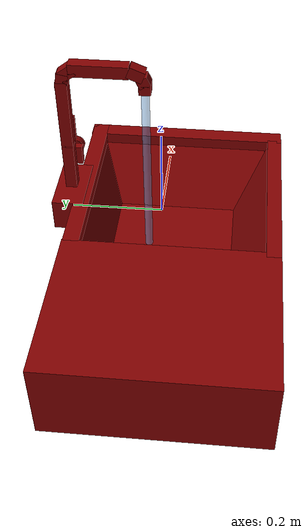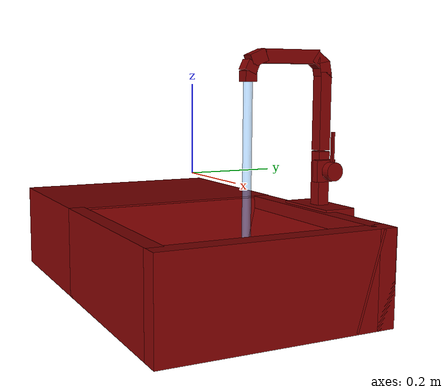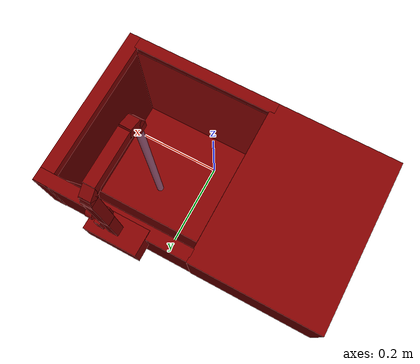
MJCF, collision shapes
<?xml version='1.0' encoding='UTF-8'?>
<mujoco model="model">
  <option timestep="0.002" gravity="0.0 0.0 -9.81"/>
  <compiler angle="radian"/>
  <asset>
    <mesh file="visuals/handle.obj" name="handle_vis"/>
    <mesh file="visuals/Body001.obj" name="Body001_vis"/>
    <mesh file="visuals/spout.obj" name="spout_vis"/>
    <texture file="visuals/T_BC001.png" name="Body001_material" type="2d"/>
    <material name="Body001_material" rgba="1 1 1 1.0" texture="Body001_material" shininess="0.1" specular="3"/>
    <texture file="visuals/T_BC001.png" name="handle_material" type="2d"/>
    <material name="handle_material" rgba="1 1 1 1.0" texture="handle_material" shininess="0.1" specular="3"/>
    <texture file="visuals/T_BC001.png" name="spout_material" type="2d"/>
    <material name="spout_material" rgba="1 1 1 1.0" texture="spout_material" shininess="0.1" specular="3"/>
  </asset>
  <default>
    <default class="visual">
      <geom conaffinity="0" contype="0" group="1" type="mesh"/>
    </default>
    <default class="collision">
      <geom group="0" rgba="0.5 0 0 0.5" solimp="0.998 0.998 0.001" solref="0.001 2"/>
    </default>
    <default class="spawn">
      <geom group="0" rgba="1 1 1 0.5" contype="0" conaffinity="0"/>
      <site group="0" rgba="1 1 1 0.5"/>
    </default>
    <default class="region">
      <geom group="1" conaffinity="0" contype="0" rgba="0 1 0 0"/>
    </default>
  </default>
  <worldbody>
    <body>
      <body name="object">
        <geom mesh="Body001_vis" type="mesh" solimp="0.998 0.998 0.001" solref="0.001 1" friction="0.95 0.3 0.1" class="visual" material="Body001_material"/>
        <geom type="box" pos="0.16663018 -0.25851465 -0.17092481" size="0.22345054149627686 0.017767369747161865 0.10032819956541061" quat="1.0 0.0 0.0 0.0" class="collision"/>
        <geom type="box" pos="0.19058277 0.20809307 -0.17092481" size="0.2342374175786972 0.01933664083480835 0.10032819956541061" quat="1.0 0.0 0.0 0.0" class="collision"/>
        <geom type="box" pos="0.40365690 -0.02369790 -0.17092481" size="0.02116328477859497 0.25258415937423706 0.10032819956541061" quat="1.0 0.0 0.0 0.0" class="collision"/>
        <geom type="box" pos="0.17358396 -0.02730834 -0.25996244" size="0.21415582299232483 0.21705441176891327 0.01129104383289814" quat="1.0 0.0 0.0 0.0" class="collision"/>
        <geom type="box" pos="0.15698193 0.23891968 -0.10482294" size="0.07781156897544861 0.03736326843500137 0.039299458265304565" quat="1.0 0.0 0.0 0.0" class="collision"/>
        <geom type="box" pos="0.15770048 0.23933315 -0.00594367" size="0.014406781643629074 0.013618595898151398 0.05938158556818962" quat="1.0 0.0 0.0 0.0" class="collision"/>
        <geom type="box" pos="0.17764703 0.23477545 0.01228489" size="0.008593222126364708 0.02361196093261242 0.023806529119610786" quat="1.0 0.0 0.0 0.0" class="collision"/>
        <geom type="box" pos="-0.23308953 -0.02369789 -0.17092484" size="0.19166365265846252 0.2525840997695923 0.10032818466424942" quat="1.0 0.0 0.0 0.0" class="collision"/>
        <geom type="box" pos="0.19058283 0.17075255 -0.17017539" size="0.23423747718334198 0.0025818401481956244 0.10163592547178268" quat="0.9898217916488647 -0.14231231808662415 -0.0 0.0" class="collision"/>
        <geom type="box" pos="0.17116182 -0.20427034 -0.17052633" size="0.2343486249446869 0.0025818401481956244 0.10163593292236328" quat="0.9736520051956177 0.22803905606269836 0.0 0.0" class="collision"/>
        <geom type="box" pos="0.35153494 -0.01666721 -0.16638383" size="0.2179635465145111 0.0025818401481956244 0.10163593292236328" quat="0.6884759664535522 0.16124796867370605 0.16124795377254486 0.6884759068489075" class="collision"/>
        <geom type="box" pos="-0.03260744 -0.01666721 -0.16625552" size="0.2179635465145111 0.0025818406138569117 0.09228679537773132" quat="0.7060168385505676 -0.03924567252397537 -0.03924565389752388 0.7060168385505676" class="collision"/>
        <body name="handle">
          <joint axis="1.0 0.0 0.0" pos="0.20041150 0.23378953 0.01414507" limited="true" name="handle_temp_joint" type="hinge" range="-0.7853981633974483 0.7853981633974483" damping="0.5" frictionloss="1" armature="2"/>
          <joint axis="0.0 1.0 0.0" pos="0.20041150 0.23378953 0.01414507" limited="true" name="handle_joint" type="hinge" range="0 0.5" damping="0.5" frictionloss="1" armature="2"/>
          <geom mesh="handle_vis" type="mesh" solimp="0.998 0.998 0.001" solref="0.001 1" friction="0.95 0.3 0.1" class="visual" material="handle_material"/>
          <geom type="cylinder" pos="0.21028650 0.23355758 0.01366222" size="0.020145172253251076 0.00976423267275095" quat="0.7071068286895752 -0.0 0.7071067690849304 0.0" class="collision"/>
          <geom name="handle_main" type="box" pos="0.20876464 0.23350600 0.06633405" size="0.003144390881061554 0.0028439750894904137 0.032371636480093" quat="1.0 0.0 0.0 0.0" class="collision"/>
        </body>
        <body name="spout">
          <joint axis="0.0 0.0 1.0" pos="0.15675047 0.23910322 0.16301976" limited="true" name="spout_joint" range="-0.7853981633974483 0.7853981633974483" type="hinge" damping="10"/>
          <site type="cylinder" rgba="0.5 0.75 1 0.5" size="0.009647421538829803 0.23899467289447784" pos="0.15685652 0.05203576 -0.03057855" name="water"/>
          <geom mesh="spout_vis" type="mesh" solimp="0.998 0.998 0.001" solref="0.001 1" friction="0.95 0.3 0.1" class="visual" material="spout_material"/>
          <geom type="box" pos="0.15770048 0.23933315 0.14137934" size="0.014406781643629074 0.013618595898151398 0.08504720777273178" quat="1.0 0.0 0.0 0.0" class="collision" name="spout_main"/>
          <geom type="box" pos="0.15770048 0.05444910 0.23576683" size="0.014406781643629074 0.013618596829473972 0.011216707527637482" quat="0.9767463207244873 -0.21439839899539948 -0.0 0.0" class="collision"/>
          <geom type="box" pos="0.15770048 0.15369728 0.25861388" size="0.014406781643629074 0.06741032004356384 0.014789029955863953" quat="1.0 0.0 0.0 0.0" class="collision"/>
          <geom type="box" pos="0.15770048 0.05171007 0.21676479" size="0.014406781643629074 0.013618596829473972 0.011216707527637482" quat="1.0 0.0 0.0 0.0" class="collision"/>
          <geom type="box" pos="0.15770048 0.07074359 0.25461408" size="0.014406781643629074 0.013618596829473972 0.018483925610780716" quat="0.8309270143508911 -0.5563814043998718 -0.0 0.0" class="collision"/>
          <geom type="box" pos="0.15770048 0.22575279 0.24884842" size="0.014406781643629074 0.013618596829473972 0.018483925610780716" quat="0.4496017098426819 -0.8932291269302368 -0.0 0.0" class="collision"/>
          <geom type="box" pos="0.15770048 0.23739367 0.22950402" size="0.014406781643629074 0.013618596829473972 0.018483925610780716" quat="0.09119181334972382 -0.9958333373069763 -0.0 0.0" class="collision"/>
        </body>
        <geom class="region" name="reg_basin" type="box" pos="0.145956685 -0.011062744999999999 -0.162600675" size="0.160274385 0.14720317500000002 0.085393035"/>
        <geom class="region" name="reg_main" type="box" pos="1.1499999999498023e-07 -0.025 -0.17092512499999998" size="0.425820125 0.2515 0.101328475"/>
      </body>
    </body>
  </worldbody>
  <actuator>
    <motor name="handle_joint_actuator" joint="handle_joint" gear="10"/>
    <motor name="handle_temp_joint_actuator" joint="handle_temp_joint" gear="10"/>
    <motor name="spout_joint_actuator" joint="spout_joint" gear="10"/>
  </actuator>
</mujoco>
